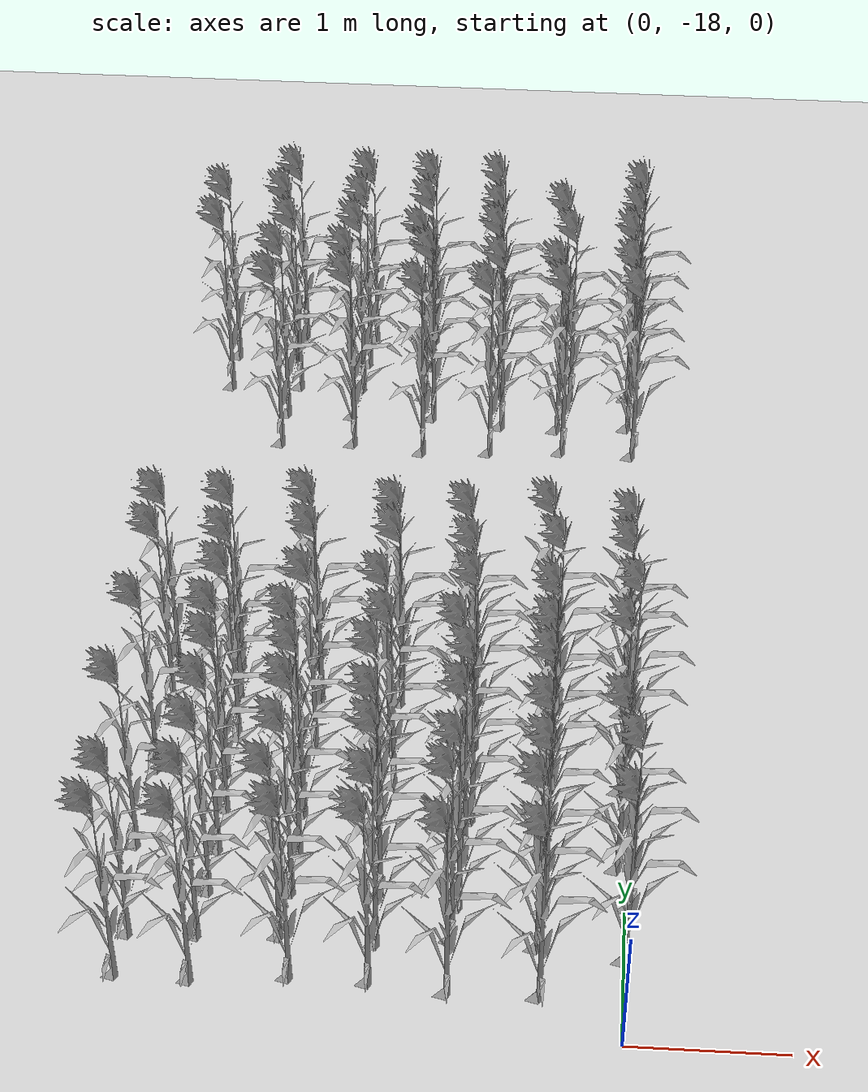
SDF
<sdf version="1.7">
 <world name="farmland_world">
  <model name="ground_plane">
   <static>1</static>
   <link name="link">
    <collision name="collision">
     <geometry><plane><normal>0 0 1</normal><size>40.0 40.0</size></plane></geometry>
     <surface><friction><ode><mu>100</mu><mu2>50</mu2></ode></friction></surface>
    </collision>
    <visual name="visual">
     <cast_shadows>0</cast_shadows>
     <geometry><plane><normal>0 0 1</normal><size>40.0 40.0</size></plane></geometry>
     <material>
      <script><uri>file://media/materials/scripts/gazebo.material</uri><name>Gazebo/Grey</name></script>
     </material>
    </visual>
   </link>
  </model>
  <model name="tree_3_1605">
   <static>1</static>
   <link name="link">
    <collision name="collision">
     <geometry><mesh><uri>model://Corn_low_poly/corn.obj</uri><scale>1 1 1</scale></mesh></geometry>
     <surface><friction><ode><mu>100</mu><mu2>50</mu2></ode></friction></surface>
    </collision>
    <visual name="visual">
     <geometry><mesh><uri>model://Corn_low_poly/corn.obj</uri><scale>1 1 1</scale></mesh></geometry>
    </visual>
   </link>
   <pose>0.03580438227191323 -16.965734375061757 0 0 0 0</pose>
  </model>
  <model name="tree_3_1606">
   <static>1</static>
   <link name="link">
    <collision name="collision">
     <geometry><mesh><uri>model://Corn_low_poly/corn.obj</uri><scale>1 1 1</scale></mesh></geometry>
     <surface><friction><ode><mu>100</mu><mu2>50</mu2></ode></friction></surface>
    </collision>
    <visual name="visual">
     <geometry><mesh><uri>model://Corn_low_poly/corn.obj</uri><scale>1 1 1</scale></mesh></geometry>
    </visual>
   </link>
   <pose>-0.48806217742073676 -17.019075737914203 0 0 0 0</pose>
  </model>
  <model name="tree_3_1607">
   <static>1</static>
   <link name="link">
    <collision name="collision">
     <geometry><mesh><uri>model://Corn_low_poly/corn.obj</uri><scale>1 1 1</scale></mesh></geometry>
     <surface><friction><ode><mu>100</mu><mu2>50</mu2></ode></friction></surface>
    </collision>
    <visual name="visual">
     <geometry><mesh><uri>model://Corn_low_poly/corn.obj</uri><scale>1 1 1</scale></mesh></geometry>
    </visual>
   </link>
   <pose>-1.022602186797494 -17.025036927320958 0 0 0 0</pose>
  </model>
  <model name="tree_3_1608">
   <static>1</static>
   <link name="link">
    <collision name="collision">
     <geometry><mesh><uri>model://Corn_low_poly/corn.obj</uri><scale>1 1 1</scale></mesh></geometry>
     <surface><friction><ode><mu>100</mu><mu2>50</mu2></ode></friction></surface>
    </collision>
    <visual name="visual">
     <geometry><mesh><uri>model://Corn_low_poly/corn.obj</uri><scale>1 1 1</scale></mesh></geometry>
    </visual>
   </link>
   <pose>-1.51720630812471 -16.95504403540866 0 0 0 0</pose>
  </model>
  <model name="tree_3_1609">
   <static>1</static>
   <link name="link">
    <collision name="collision">
     <geometry><mesh><uri>model://Corn_low_poly/corn.obj</uri><scale>1 1 1</scale></mesh></geometry>
     <surface><friction><ode><mu>100</mu><mu2>50</mu2></ode></friction></surface>
    </collision>
    <visual name="visual">
     <geometry><mesh><uri>model://Corn_low_poly/corn.obj</uri><scale>1 1 1</scale></mesh></geometry>
    </visual>
   </link>
   <pose>-2.0699709084349744 -16.97893547436473 0 0 0 0</pose>
  </model>
  <model name="tree_3_1610">
   <static>1</static>
   <link name="link">
    <collision name="collision">
     <geometry><mesh><uri>model://Corn_low_poly/corn.obj</uri><scale>1 1 1</scale></mesh></geometry>
     <surface><friction><ode><mu>100</mu><mu2>50</mu2></ode></friction></surface>
    </collision>
    <visual name="visual">
     <geometry><mesh><uri>model://Corn_low_poly/corn.obj</uri><scale>1 1 1</scale></mesh></geometry>
    </visual>
   </link>
   <pose>-2.5872986092563837 -17.003061664797787 0 0 0 0</pose>
  </model>
  <model name="tree_3_1639">
   <static>1</static>
   <link name="link">
    <collision name="collision">
     <geometry><mesh><uri>model://Corn_low_poly/corn.obj</uri><scale>1 1 1</scale></mesh></geometry>
     <surface><friction><ode><mu>100</mu><mu2>50</mu2></ode></friction></surface>
    </collision>
    <visual name="visual">
     <geometry><mesh><uri>model://Corn_low_poly/corn.obj</uri><scale>1 1 1</scale></mesh></geometry>
    </visual>
   </link>
   <pose>0.01223257692576224 -17.375856755586607 0 0 0 0</pose>
  </model>
  <model name="tree_3_1640">
   <static>1</static>
   <link name="link">
    <collision name="collision">
     <geometry><mesh><uri>model://Corn_low_poly/corn.obj</uri><scale>1 1 1</scale></mesh></geometry>
     <surface><friction><ode><mu>100</mu><mu2>50</mu2></ode></friction></surface>
    </collision>
    <visual name="visual">
     <geometry><mesh><uri>model://Corn_low_poly/corn.obj</uri><scale>1 1 1</scale></mesh></geometry>
    </visual>
   </link>
   <pose>-0.5259435954539079 -17.313602590086965 0 0 0 0</pose>
  </model>
  <model name="tree_3_1641">
   <static>1</static>
   <link name="link">
    <collision name="collision">
     <geometry><mesh><uri>model://Corn_low_poly/corn.obj</uri><scale>1 1 1</scale></mesh></geometry>
     <surface><friction><ode><mu>100</mu><mu2>50</mu2></ode></friction></surface>
    </collision>
    <visual name="visual">
     <geometry><mesh><uri>model://Corn_low_poly/corn.obj</uri><scale>1 1 1</scale></mesh></geometry>
    </visual>
   </link>
   <pose>-1.0512692379449893 -17.281738934979764 0 0 0 0</pose>
  </model>
  <model name="tree_3_1642">
   <static>1</static>
   <link name="link">
    <collision name="collision">
     <geometry><mesh><uri>model://Corn_low_poly/corn.obj</uri><scale>1 1 1</scale></mesh></geometry>
     <surface><friction><ode><mu>100</mu><mu2>50</mu2></ode></friction></surface>
    </collision>
    <visual name="visual">
     <geometry><mesh><uri>model://Corn_low_poly/corn.obj</uri><scale>1 1 1</scale></mesh></geometry>
    </visual>
   </link>
   <pose>-1.511977792692507 -17.348620689104468 0 0 0 0</pose>
  </model>
  <model name="tree_3_1643">
   <static>1</static>
   <link name="link">
    <collision name="collision">
     <geometry><mesh><uri>model://Corn_low_poly/corn.obj</uri><scale>1 1 1</scale></mesh></geometry>
     <surface><friction><ode><mu>100</mu><mu2>50</mu2></ode></friction></surface>
    </collision>
    <visual name="visual">
     <geometry><mesh><uri>model://Corn_low_poly/corn.obj</uri><scale>1 1 1</scale></mesh></geometry>
    </visual>
   </link>
   <pose>-2.1064553904623096 -17.3278490546456 0 0 0 0</pose>
  </model>
  <model name="tree_3_1644">
   <static>1</static>
   <link name="link">
    <collision name="collision">
     <geometry><mesh><uri>model://Corn_low_poly/corn.obj</uri><scale>1 1 1</scale></mesh></geometry>
     <surface><friction><ode><mu>100</mu><mu2>50</mu2></ode></friction></surface>
    </collision>
    <visual name="visual">
     <geometry><mesh><uri>model://Corn_low_poly/corn.obj</uri><scale>1 1 1</scale></mesh></geometry>
    </visual>
   </link>
   <pose>-2.6143656554627808 -17.35269145576499 0 0 0 0</pose>
  </model>
  <model name="tree_3_1645">
   <static>1</static>
   <link name="link">
    <collision name="collision">
     <geometry><mesh><uri>model://Corn_low_poly/corn.obj</uri><scale>1 1 1</scale></mesh></geometry>
     <surface><friction><ode><mu>100</mu><mu2>50</mu2></ode></friction></surface>
    </collision>
    <visual name="visual">
     <geometry><mesh><uri>model://Corn_low_poly/corn.obj</uri><scale>1 1 1</scale></mesh></geometry>
    </visual>
   </link>
   <pose>-3.0410112991166613 -17.366645493108628 0 0 0 0</pose>
  </model>
  <model name="tree_3_1674">
   <static>1</static>
   <link name="link">
    <collision name="collision">
     <geometry><mesh><uri>model://Corn_low_poly/corn.obj</uri><scale>1 1 1</scale></mesh></geometry>
     <surface><friction><ode><mu>100</mu><mu2>50</mu2></ode></friction></surface>
    </collision>
    <visual name="visual">
     <geometry><mesh><uri>model://Corn_low_poly/corn.obj</uri><scale>1 1 1</scale></mesh></geometry>
    </visual>
   </link>
   <pose>-0.49896904610353937 -17.683444936593016 0 0 0 0</pose>
  </model>
  <model name="tree_3_1675">
   <static>1</static>
   <link name="link">
    <collision name="collision">
     <geometry><mesh><uri>model://Corn_low_poly/corn.obj</uri><scale>1 1 1</scale></mesh></geometry>
     <surface><friction><ode><mu>100</mu><mu2>50</mu2></ode></friction></surface>
    </collision>
    <visual name="visual">
     <geometry><mesh><uri>model://Corn_low_poly/corn.obj</uri><scale>1 1 1</scale></mesh></geometry>
    </visual>
   </link>
   <pose>-1.0566497971381217 -17.69189413715949 0 0 0 0</pose>
  </model>
  <model name="tree_3_1676">
   <static>1</static>
   <link name="link">
    <collision name="collision">
     <geometry><mesh><uri>model://Corn_low_poly/corn.obj</uri><scale>1 1 1</scale></mesh></geometry>
     <surface><friction><ode><mu>100</mu><mu2>50</mu2></ode></friction></surface>
    </collision>
    <visual name="visual">
     <geometry><mesh><uri>model://Corn_low_poly/corn.obj</uri><scale>1 1 1</scale></mesh></geometry>
    </visual>
   </link>
   <pose>-1.5346013113236674 -17.64199710138518 0 0 0 0</pose>
  </model>
  <model name="tree_3_1677">
   <static>1</static>
   <link name="link">
    <collision name="collision">
     <geometry><mesh><uri>model://Corn_low_poly/corn.obj</uri><scale>1 1 1</scale></mesh></geometry>
     <surface><friction><ode><mu>100</mu><mu2>50</mu2></ode></friction></surface>
    </collision>
    <visual name="visual">
     <geometry><mesh><uri>model://Corn_low_poly/corn.obj</uri><scale>1 1 1</scale></mesh></geometry>
    </visual>
   </link>
   <pose>-2.0174713381224842 -17.634693459930666 0 0 0 0</pose>
  </model>
  <model name="tree_3_1678">
   <static>1</static>
   <link name="link">
    <collision name="collision">
     <geometry><mesh><uri>model://Corn_low_poly/corn.obj</uri><scale>1 1 1</scale></mesh></geometry>
     <surface><friction><ode><mu>100</mu><mu2>50</mu2></ode></friction></surface>
    </collision>
    <visual name="visual">
     <geometry><mesh><uri>model://Corn_low_poly/corn.obj</uri><scale>1 1 1</scale></mesh></geometry>
    </visual>
   </link>
   <pose>-2.6153042352268594 -17.69215711642908 0 0 0 0</pose>
  </model>
  <model name="tree_3_1679">
   <static>1</static>
   <link name="link">
    <collision name="collision">
     <geometry><mesh><uri>model://Corn_low_poly/corn.obj</uri><scale>1 1 1</scale></mesh></geometry>
     <surface><friction><ode><mu>100</mu><mu2>50</mu2></ode></friction></surface>
    </collision>
    <visual name="visual">
     <geometry><mesh><uri>model://Corn_low_poly/corn.obj</uri><scale>1 1 1</scale></mesh></geometry>
    </visual>
   </link>
   <pose>-3.0767169645903296 -17.681668698711448 0 0 0 0</pose>
  </model>
  <model name="tree_3_1707">
   <static>1</static>
   <link name="link">
    <collision name="collision">
     <geometry><mesh><uri>model://Corn_low_poly/corn.obj</uri><scale>1 1 1</scale></mesh></geometry>
     <surface><friction><ode><mu>100</mu><mu2>50</mu2></ode></friction></surface>
    </collision>
    <visual name="visual">
     <geometry><mesh><uri>model://Corn_low_poly/corn.obj</uri><scale>1 1 1</scale></mesh></geometry>
    </visual>
   </link>
   <pose>-0.035449133182240834 -15.999406268520676 0 0 0 0</pose>
  </model>
  <model name="tree_3_1708">
   <static>1</static>
   <link name="link">
    <collision name="collision">
     <geometry><mesh><uri>model://Corn_low_poly/corn.obj</uri><scale>1 1 1</scale></mesh></geometry>
     <surface><friction><ode><mu>100</mu><mu2>50</mu2></ode></friction></surface>
    </collision>
    <visual name="visual">
     <geometry><mesh><uri>model://Corn_low_poly/corn.obj</uri><scale>1 1 1</scale></mesh></geometry>
    </visual>
   </link>
   <pose>-0.48854795535615475 -16.032327239612282 0 0 0 0</pose>
  </model>
  <model name="tree_3_1709">
   <static>1</static>
   <link name="link">
    <collision name="collision">
     <geometry><mesh><uri>model://Corn_low_poly/corn.obj</uri><scale>1 1 1</scale></mesh></geometry>
     <surface><friction><ode><mu>100</mu><mu2>50</mu2></ode></friction></surface>
    </collision>
    <visual name="visual">
     <geometry><mesh><uri>model://Corn_low_poly/corn.obj</uri><scale>1 1 1</scale></mesh></geometry>
    </visual>
   </link>
   <pose>-1.0565862001060122 -16.044277763240892 0 0 0 0</pose>
  </model>
  <model name="tree_3_1710">
   <static>1</static>
   <link name="link">
    <collision name="collision">
     <geometry><mesh><uri>model://Corn_low_poly/corn.obj</uri><scale>1 1 1</scale></mesh></geometry>
     <surface><friction><ode><mu>100</mu><mu2>50</mu2></ode></friction></surface>
    </collision>
    <visual name="visual">
     <geometry><mesh><uri>model://Corn_low_poly/corn.obj</uri><scale>1 1 1</scale></mesh></geometry>
    </visual>
   </link>
   <pose>-1.5063646474283288 -16.041509782245402 0 0 0 0</pose>
  </model>
  <model name="tree_3_1711">
   <static>1</static>
   <link name="link">
    <collision name="collision">
     <geometry><mesh><uri>model://Corn_low_poly/corn.obj</uri><scale>1 1 1</scale></mesh></geometry>
     <surface><friction><ode><mu>100</mu><mu2>50</mu2></ode></friction></surface>
    </collision>
    <visual name="visual">
     <geometry><mesh><uri>model://Corn_low_poly/corn.obj</uri><scale>1 1 1</scale></mesh></geometry>
    </visual>
   </link>
   <pose>-2.106981034272046 -16.042465766142232 0 0 0 0</pose>
  </model>
  <model name="tree_3_1712">
   <static>1</static>
   <link name="link">
    <collision name="collision">
     <geometry><mesh><uri>model://Corn_low_poly/corn.obj</uri><scale>1 1 1</scale></mesh></geometry>
     <surface><friction><ode><mu>100</mu><mu2>50</mu2></ode></friction></surface>
    </collision>
    <visual name="visual">
     <geometry><mesh><uri>model://Corn_low_poly/corn.obj</uri><scale>1 1 1</scale></mesh></geometry>
    </visual>
   </link>
   <pose>-2.5999328370831476 -16.018123625433503 0 0 0 0</pose>
  </model>
  <model name="tree_3_1713">
   <static>1</static>
   <link name="link">
    <collision name="collision">
     <geometry><mesh><uri>model://Corn_low_poly/corn.obj</uri><scale>1 1 1</scale></mesh></geometry>
     <surface><friction><ode><mu>100</mu><mu2>50</mu2></ode></friction></surface>
    </collision>
    <visual name="visual">
     <geometry><mesh><uri>model://Corn_low_poly/corn.obj</uri><scale>1 1 1</scale></mesh></geometry>
    </visual>
   </link>
   <pose>-3.06489963839304 -16.00297382069055 0 0 0 0</pose>
  </model>
  <model name="tree_3_1742">
   <static>1</static>
   <link name="link">
    <collision name="collision">
     <geometry><mesh><uri>model://Corn_low_poly/corn.obj</uri><scale>1 1 1</scale></mesh></geometry>
     <surface><friction><ode><mu>100</mu><mu2>50</mu2></ode></friction></surface>
    </collision>
    <visual name="visual">
     <geometry><mesh><uri>model://Corn_low_poly/corn.obj</uri><scale>1 1 1</scale></mesh></geometry>
    </visual>
   </link>
   <pose>-0.49264915320095404 -16.300851779280137 0 0 0 0</pose>
  </model>
  <model name="tree_3_1743">
   <static>1</static>
   <link name="link">
    <collision name="collision">
     <geometry><mesh><uri>model://Corn_low_poly/corn.obj</uri><scale>1 1 1</scale></mesh></geometry>
     <surface><friction><ode><mu>100</mu><mu2>50</mu2></ode></friction></surface>
    </collision>
    <visual name="visual">
     <geometry><mesh><uri>model://Corn_low_poly/corn.obj</uri><scale>1 1 1</scale></mesh></geometry>
    </visual>
   </link>
   <pose>-0.982311568787443 -16.311153095895232 0 0 0 0</pose>
  </model>
  <model name="tree_3_1744">
   <static>1</static>
   <link name="link">
    <collision name="collision">
     <geometry><mesh><uri>model://Corn_low_poly/corn.obj</uri><scale>1 1 1</scale></mesh></geometry>
     <surface><friction><ode><mu>100</mu><mu2>50</mu2></ode></friction></surface>
    </collision>
    <visual name="visual">
     <geometry><mesh><uri>model://Corn_low_poly/corn.obj</uri><scale>1 1 1</scale></mesh></geometry>
    </visual>
   </link>
   <pose>-1.5735538980863804 -16.304917054576094 0 0 0 0</pose>
  </model>
  <model name="tree_3_1745">
   <static>1</static>
   <link name="link">
    <collision name="collision">
     <geometry><mesh><uri>model://Corn_low_poly/corn.obj</uri><scale>1 1 1</scale></mesh></geometry>
     <surface><friction><ode><mu>100</mu><mu2>50</mu2></ode></friction></surface>
    </collision>
    <visual name="visual">
     <geometry><mesh><uri>model://Corn_low_poly/corn.obj</uri><scale>1 1 1</scale></mesh></geometry>
    </visual>
   </link>
   <pose>-2.061409340842669 -16.32086119700367 0 0 0 0</pose>
  </model>
  <model name="tree_3_1746">
   <static>1</static>
   <link name="link">
    <collision name="collision">
     <geometry><mesh><uri>model://Corn_low_poly/corn.obj</uri><scale>1 1 1</scale></mesh></geometry>
     <surface><friction><ode><mu>100</mu><mu2>50</mu2></ode></friction></surface>
    </collision>
    <visual name="visual">
     <geometry><mesh><uri>model://Corn_low_poly/corn.obj</uri><scale>1 1 1</scale></mesh></geometry>
    </visual>
   </link>
   <pose>-2.5669677084516582 -16.312730404993385 0 0 0 0</pose>
  </model>
  <model name="tree_3_1775">
   <static>1</static>
   <link name="link">
    <collision name="collision">
     <geometry><mesh><uri>model://Corn_low_poly/corn.obj</uri><scale>1 1 1</scale></mesh></geometry>
     <surface><friction><ode><mu>100</mu><mu2>50</mu2></ode></friction></surface>
    </collision>
    <visual name="visual">
     <geometry><mesh><uri>model://Corn_low_poly/corn.obj</uri><scale>1 1 1</scale></mesh></geometry>
    </visual>
   </link>
   <pose>-0.042753023206622935 -16.657932509737165 0 0 0 0</pose>
  </model>
  <model name="tree_3_1776">
   <static>1</static>
   <link name="link">
    <collision name="collision">
     <geometry><mesh><uri>model://Corn_low_poly/corn.obj</uri><scale>1 1 1</scale></mesh></geometry>
     <surface><friction><ode><mu>100</mu><mu2>50</mu2></ode></friction></surface>
    </collision>
    <visual name="visual">
     <geometry><mesh><uri>model://Corn_low_poly/corn.obj</uri><scale>1 1 1</scale></mesh></geometry>
    </visual>
   </link>
   <pose>-0.49622047188545415 -16.69370384788353 0 0 0 0</pose>
  </model>
  <model name="tree_3_1777">
   <static>1</static>
   <link name="link">
    <collision name="collision">
     <geometry><mesh><uri>model://Corn_low_poly/corn.obj</uri><scale>1 1 1</scale></mesh></geometry>
     <surface><friction><ode><mu>100</mu><mu2>50</mu2></ode></friction></surface>
    </collision>
    <visual name="visual">
     <geometry><mesh><uri>model://Corn_low_poly/corn.obj</uri><scale>1 1 1</scale></mesh></geometry>
    </visual>
   </link>
   <pose>-1.0104470062620983 -16.62006676315451 0 0 0 0</pose>
  </model>
  <model name="tree_3_1778">
   <static>1</static>
   <link name="link">
    <collision name="collision">
     <geometry><mesh><uri>model://Corn_low_poly/corn.obj</uri><scale>1 1 1</scale></mesh></geometry>
     <surface><friction><ode><mu>100</mu><mu2>50</mu2></ode></friction></surface>
    </collision>
    <visual name="visual">
     <geometry><mesh><uri>model://Corn_low_poly/corn.obj</uri><scale>1 1 1</scale></mesh></geometry>
    </visual>
   </link>
   <pose>-1.5483287686617342 -16.674632684055368 0 0 0 0</pose>
  </model>
  <model name="tree_3_1779">
   <static>1</static>
   <link name="link">
    <collision name="collision">
     <geometry><mesh><uri>model://Corn_low_poly/corn.obj</uri><scale>1 1 1</scale></mesh></geometry>
     <surface><friction><ode><mu>100</mu><mu2>50</mu2></ode></friction></surface>
    </collision>
    <visual name="visual">
     <geometry><mesh><uri>model://Corn_low_poly/corn.obj</uri><scale>1 1 1</scale></mesh></geometry>
    </visual>
   </link>
   <pose>-2.058537543798531 -16.631721036415236 0 0 0 0</pose>
  </model>
  <model name="tree_3_1780">
   <static>1</static>
   <link name="link">
    <collision name="collision">
     <geometry><mesh><uri>model://Corn_low_poly/corn.obj</uri><scale>1 1 1</scale></mesh></geometry>
     <surface><friction><ode><mu>100</mu><mu2>50</mu2></ode></friction></surface>
    </collision>
    <visual name="visual">
     <geometry><mesh><uri>model://Corn_low_poly/corn.obj</uri><scale>1 1 1</scale></mesh></geometry>
    </visual>
   </link>
   <pose>-2.573038079847714 -16.659624129910682 0 0 0 0</pose>
  </model>
  <model name="tree_3_1781">
   <static>1</static>
   <link name="link">
    <collision name="collision">
     <geometry><mesh><uri>model://Corn_low_poly/corn.obj</uri><scale>1 1 1</scale></mesh></geometry>
     <surface><friction><ode><mu>100</mu><mu2>50</mu2></ode></friction></surface>
    </collision>
    <visual name="visual">
     <geometry><mesh><uri>model://Corn_low_poly/corn.obj</uri><scale>1 1 1</scale></mesh></geometry>
    </visual>
   </link>
   <pose>-3.099198018691596 -16.65539907107195 0 0 0 0</pose>
  </model>
  <model name="tree_3_1809">
   <static>1</static>
   <link name="link">
    <collision name="collision">
     <geometry><mesh><uri>model://Corn_low_poly/corn.obj</uri><scale>1 1 1</scale></mesh></geometry>
     <surface><friction><ode><mu>100</mu><mu2>50</mu2></ode></friction></surface>
    </collision>
    <visual name="visual">
     <geometry><mesh><uri>model://Corn_low_poly/corn.obj</uri><scale>1 1 1</scale></mesh></geometry>
    </visual>
   </link>
   <pose>-0.019032483130327894 -15.04005094235962 0 0 0 0</pose>
  </model>
  <model name="tree_3_1810">
   <static>1</static>
   <link name="link">
    <collision name="collision">
     <geometry><mesh><uri>model://Corn_low_poly/corn.obj</uri><scale>1 1 1</scale></mesh></geometry>
     <surface><friction><ode><mu>100</mu><mu2>50</mu2></ode></friction></surface>
    </collision>
    <visual name="visual">
     <geometry><mesh><uri>model://Corn_low_poly/corn.obj</uri><scale>1 1 1</scale></mesh></geometry>
    </visual>
   </link>
   <pose>-0.5430563736926338 -14.96544203033237 0 0 0 0</pose>
  </model>
  <model name="tree_3_1811">
   <static>1</static>
   <link name="link">
    <collision name="collision">
     <geometry><mesh><uri>model://Corn_low_poly/corn.obj</uri><scale>1 1 1</scale></mesh></geometry>
     <surface><friction><ode><mu>100</mu><mu2>50</mu2></ode></friction></surface>
    </collision>
    <visual name="visual">
     <geometry><mesh><uri>model://Corn_low_poly/corn.obj</uri><scale>1 1 1</scale></mesh></geometry>
    </visual>
   </link>
   <pose>-1.0646083463070972 -15.026947842731158 0 0 0 0</pose>
  </model>
  <model name="tree_3_1812">
   <static>1</static>
   <link name="link">
    <collision name="collision">
     <geometry><mesh><uri>model://Corn_low_poly/corn.obj</uri><scale>1 1 1</scale></mesh></geometry>
     <surface><friction><ode><mu>100</mu><mu2>50</mu2></ode></friction></surface>
    </collision>
    <visual name="visual">
     <geometry><mesh><uri>model://Corn_low_poly/corn.obj</uri><scale>1 1 1</scale></mesh></geometry>
    </visual>
   </link>
   <pose>-1.5304120524349414 -15.029410684205766 0 0 0 0</pose>
  </model>
  <model name="tree_3_1813">
   <static>1</static>
   <link name="link">
    <collision name="collision">
     <geometry><mesh><uri>model://Corn_low_poly/corn.obj</uri><scale>1 1 1</scale></mesh></geometry>
     <surface><friction><ode><mu>100</mu><mu2>50</mu2></ode></friction></surface>
    </collision>
    <visual name="visual">
     <geometry><mesh><uri>model://Corn_low_poly/corn.obj</uri><scale>1 1 1</scale></mesh></geometry>
    </visual>
   </link>
   <pose>-2.101461535654003 -14.978871491245814 0 0 0 0</pose>
  </model>
  <model name="tree_3_1814">
   <static>1</static>
   <link name="link">
    <collision name="collision">
     <geometry><mesh><uri>model://Corn_low_poly/corn.obj</uri><scale>1 1 1</scale></mesh></geometry>
     <surface><friction><ode><mu>100</mu><mu2>50</mu2></ode></friction></surface>
    </collision>
    <visual name="visual">
     <geometry><mesh><uri>model://Corn_low_poly/corn.obj</uri><scale>1 1 1</scale></mesh></geometry>
    </visual>
   </link>
   <pose>-2.6205717691016215 -15.025686590620841 0 0 0 0</pose>
  </model>
  <model name="tree_3_1815">
   <static>1</static>
   <link name="link">
    <collision name="collision">
     <geometry><mesh><uri>model://Corn_low_poly/corn.obj</uri><scale>1 1 1</scale></mesh></geometry>
     <surface><friction><ode><mu>100</mu><mu2>50</mu2></ode></friction></surface>
    </collision>
    <visual name="visual">
     <geometry><mesh><uri>model://Corn_low_poly/corn.obj</uri><scale>1 1 1</scale></mesh></geometry>
    </visual>
   </link>
   <pose>-3.0596779697640475 -15.041468609129426 0 0 0 0</pose>
  </model>
  <model name="tree_3_1843">
   <static>1</static>
   <link name="link">
    <collision name="collision">
     <geometry><mesh><uri>model://Corn_low_poly/corn.obj</uri><scale>1 1 1</scale></mesh></geometry>
     <surface><friction><ode><mu>100</mu><mu2>50</mu2></ode></friction></surface>
    </collision>
    <visual name="visual">
     <geometry><mesh><uri>model://Corn_low_poly/corn.obj</uri><scale>1 1 1</scale></mesh></geometry>
    </visual>
   </link>
   <pose>-0.026539292519846703 -15.301367005944677 0 0 0 0</pose>
  </model>
  <model name="tree_3_1844">
   <static>1</static>
   <link name="link">
    <collision name="collision">
     <geometry><mesh><uri>model://Corn_low_poly/corn.obj</uri><scale>1 1 1</scale></mesh></geometry>
     <surface><friction><ode><mu>100</mu><mu2>50</mu2></ode></friction></surface>
    </collision>
    <visual name="visual">
     <geometry><mesh><uri>model://Corn_low_poly/corn.obj</uri><scale>1 1 1</scale></mesh></geometry>
    </visual>
   </link>
   <pose>-0.4721218758651081 -15.293385926404888 0 0 0 0</pose>
  </model>
  <model name="tree_3_1845">
   <static>1</static>
   <link name="link">
    <collision name="collision">
     <geometry><mesh><uri>model://Corn_low_poly/corn.obj</uri><scale>1 1 1</scale></mesh></geometry>
     <surface><friction><ode><mu>100</mu><mu2>50</mu2></ode></friction></surface>
    </collision>
    <visual name="visual">
     <geometry><mesh><uri>model://Corn_low_poly/corn.obj</uri><scale>1 1 1</scale></mesh></geometry>
    </visual>
   </link>
   <pose>-1.021401119915834 -15.348654434049795 0 0 0 0</pose>
  </model>
  <model name="tree_3_1846">
   <static>1</static>
   <link name="link">
    <collision name="collision">
     <geometry><mesh><uri>model://Corn_low_poly/corn.obj</uri><scale>1 1 1</scale></mesh></geometry>
     <surface><friction><ode><mu>100</mu><mu2>50</mu2></ode></friction></surface>
    </collision>
    <visual name="visual">
     <geometry><mesh><uri>model://Corn_low_poly/corn.obj</uri><scale>1 1 1</scale></mesh></geometry>
    </visual>
   </link>
   <pose>-1.512348900766611 -15.297769854534055 0 0 0 0</pose>
  </model>
  <model name="tree_3_1847">
   <static>1</static>
   <link name="link">
    <collision name="collision">
     <geometry><mesh><uri>model://Corn_low_poly/corn.obj</uri><scale>1 1 1</scale></mesh></geometry>
     <surface><friction><ode><mu>100</mu><mu2>50</mu2></ode></friction></surface>
    </collision>
    <visual name="visual">
     <geometry><mesh><uri>model://Corn_low_poly/corn.obj</uri><scale>1 1 1</scale></mesh></geometry>
    </visual>
   </link>
   <pose>-2.05180370574473 -15.289252499590285 0 0 0 0</pose>
  </model>
  <model name="tree_3_1848">
   <static>1</static>
   <link name="link">
    <collision name="collision">
     <geometry><mesh><uri>model://Corn_low_poly/corn.obj</uri><scale>1 1 1</scale></mesh></geometry>
     <surface><friction><ode><mu>100</mu><mu2>50</mu2></ode></friction></surface>
    </collision>
    <visual name="visual">
     <geometry><mesh><uri>model://Corn_low_poly/corn.obj</uri><scale>1 1 1</scale></mesh></geometry>
    </visual>
   </link>
   <pose>-2.58925958252166 -15.365116595083672 0 0 0 0</pose>
  </model>
  <model name="tree_3_1849">
   <static>1</static>
   <link name="link">
    <collision name="collision">
     <geometry><mesh><uri>model://Corn_low_poly/corn.obj</uri><scale>1 1 1</scale></mesh></geometry>
     <surface><friction><ode><mu>100</mu><mu2>50</mu2></ode></friction></surface>
    </collision>
    <visual name="visual">
     <geometry><mesh><uri>model://Corn_low_poly/corn.obj</uri><scale>1 1 1</scale></mesh></geometry>
    </visual>
   </link>
   <pose>-3.051806501781784 -15.362865812654638 0 0 0 0</pose>
  </model>
  <model name="tree_3_1877">
   <static>1</static>
   <link name="link">
    <collision name="collision">
     <geometry><mesh><uri>model://Corn_low_poly/corn.obj</uri><scale>1 1 1</scale></mesh></geometry>
     <surface><friction><ode><mu>100</mu><mu2>50</mu2></ode></friction></surface>
    </collision>
    <visual name="visual">
     <geometry><mesh><uri>model://Corn_low_poly/corn.obj</uri><scale>1 1 1</scale></mesh></geometry>
    </visual>
   </link>
   <pose>0.02148245748185772 -15.65390571926267 0 0 0 0</pose>
  </model>
  <model name="tree_3_1878">
   <static>1</static>
   <link name="link">
    <collision name="collision">
     <geometry><mesh><uri>model://Corn_low_poly/corn.obj</uri><scale>1 1 1</scale></mesh></geometry>
     <surface><friction><ode><mu>100</mu><mu2>50</mu2></ode></friction></surface>
    </collision>
    <visual name="visual">
     <geometry><mesh><uri>model://Corn_low_poly/corn.obj</uri><scale>1 1 1</scale></mesh></geometry>
    </visual>
   </link>
   <pose>-0.49041434500487574 -15.714281886583645 0 0 0 0</pose>
  </model>
  <model name="tree_3_1879">
   <static>1</static>
   <link name="link">
    <collision name="collision">
     <geometry><mesh><uri>model://Corn_low_poly/corn.obj</uri><scale>1 1 1</scale></mesh></geometry>
     <surface><friction><ode><mu>100</mu><mu2>50</mu2></ode></friction></surface>
    </collision>
    <visual name="visual">
     <geometry><mesh><uri>model://Corn_low_poly/corn.obj</uri><scale>1 1 1</scale></mesh></geometry>
    </visual>
   </link>
   <pose>-0.993373801347837 -15.665846552643012 0 0 0 0</pose>
  </model>
  <model name="tree_3_1880">
   <static>1</static>
   <link name="link">
    <collision name="collision">
     <geometry><mesh><uri>model://Corn_low_poly/corn.obj</uri><scale>1 1 1</scale></mesh></geometry>
     <surface><friction><ode><mu>100</mu><mu2>50</mu2></ode></friction></surface>
    </collision>
    <visual name="visual">
     <geometry><mesh><uri>model://Corn_low_poly/corn.obj</uri><scale>1 1 1</scale></mesh></geometry>
    </visual>
   </link>
   <pose>-1.5607460309301266 -15.709786410748686 0 0 0 0</pose>
  </model>
  <model name="tree_3_1881">
   <static>1</static>
   <link name="link">
    <collision name="collision">
     <geometry><mesh><uri>model://Corn_low_poly/corn.obj</uri><scale>1 1 1</scale></mesh></geometry>
     <surface><friction><ode><mu>100</mu><mu2>50</mu2></ode></friction></surface>
    </collision>
    <visual name="visual">
     <geometry><mesh><uri>model://Corn_low_poly/corn.obj</uri><scale>1 1 1</scale></mesh></geometry>
    </visual>
   </link>
   <pose>-2.0506551109880213 -15.710978861527499 0 0 0 0</pose>
  </model>
  <model name="tree_3_1882">
   <static>1</static>
   <link name="link">
    <collision name="collision">
     <geometry><mesh><uri>model://Corn_low_poly/corn.obj</uri><scale>1 1 1</scale></mesh></geometry>
     <surface><friction><ode><mu>100</mu><mu2>50</mu2></ode></friction></surface>
    </collision>
    <visual name="visual">
     <geometry><mesh><uri>model://Corn_low_poly/corn.obj</uri><scale>1 1 1</scale></mesh></geometry>
    </visual>
   </link>
   <pose>-2.565242098770092 -15.683182900909792 0 0 0 0</pose>
  </model>
  <model name="tree_3_1911">
   <static>1</static>
   <link name="link">
    <collision name="collision">
     <geometry><mesh><uri>model://Corn_low_poly/corn.obj</uri><scale>1 1 1</scale></mesh></geometry>
     <surface><friction><ode><mu>100</mu><mu2>50</mu2></ode></friction></surface>
    </collision>
    <visual name="visual">
     <geometry><mesh><uri>model://Corn_low_poly/corn.obj</uri><scale>1 1 1</scale></mesh></geometry>
    </visual>
   </link>
   <pose>-0.034425861917255086 -11.959343326930393 0 0 0 0</pose>
  </model>
  <model name="tree_3_1912">
   <static>1</static>
   <link name="link">
    <collision name="collision">
     <geometry><mesh><uri>model://Corn_low_poly/corn.obj</uri><scale>1 1 1</scale></mesh></geometry>
     <surface><friction><ode><mu>100</mu><mu2>50</mu2></ode></friction></surface>
    </collision>
    <visual name="visual">
     <geometry><mesh><uri>model://Corn_low_poly/corn.obj</uri><scale>1 1 1</scale></mesh></geometry>
    </visual>
   </link>
   <pose>-0.47166199121898555 -11.991934822539985 0 0 0 0</pose>
  </model>
  <model name="tree_3_1913">
   <static>1</static>
   <link name="link">
    <collision name="collision">
     <geometry><mesh><uri>model://Corn_low_poly/corn.obj</uri><scale>1 1 1</scale></mesh></geometry>
     <surface><friction><ode><mu>100</mu><mu2>50</mu2></ode></friction></surface>
    </collision>
    <visual name="visual">
     <geometry><mesh><uri>model://Corn_low_poly/corn.obj</uri><scale>1 1 1</scale></mesh></geometry>
    </visual>
   </link>
   <pose>-1.0188811236813347 -11.96439535605653 0 0 0 0</pose>
  </model>
  <model name="tree_3_1914">
   <static>1</static>
   <link name="link">
    <collision name="collision">
     <geometry><mesh><uri>model://Corn_low_poly/corn.obj</uri><scale>1 1 1</scale></mesh></geometry>
     <surface><friction><ode><mu>100</mu><mu2>50</mu2></ode></friction></surface>
    </collision>
    <visual name="visual">
     <geometry><mesh><uri>model://Corn_low_poly/corn.obj</uri><scale>1 1 1</scale></mesh></geometry>
    </visual>
   </link>
   <pose>-1.5812491391285801 -12.042096671539866 0 0 0 0</pose>
  </model>
  <model name="tree_3_1915">
   <static>1</static>
   <link name="link">
    <collision name="collision">
     <geometry><mesh><uri>model://Corn_low_poly/corn.obj</uri><scale>1 1 1</scale></mesh></geometry>
     <surface><friction><ode><mu>100</mu><mu2>50</mu2></ode></friction></surface>
    </collision>
    <visual name="visual">
     <geometry><mesh><uri>model://Corn_low_poly/corn.obj</uri><scale>1 1 1</scale></mesh></geometry>
    </visual>
   </link>
   <pose>-2.0643886145613894 -11.972259885401213 0 0 0 0</pose>
  </model>
  <model name="tree_3_1916">
   <static>1</static>
   <link name="link">
    <collision name="collision">
     <geometry><mesh><uri>model://Corn_low_poly/corn.obj</uri><scale>1 1 1</scale></mesh></geometry>
     <surface><friction><ode><mu>100</mu><mu2>50</mu2></ode></friction></surface>
    </collision>
    <visual name="visual">
     <geometry><mesh><uri>model://Corn_low_poly/corn.obj</uri><scale>1 1 1</scale></mesh></geometry>
    </visual>
   </link>
   <pose>-2.547749022611902 -11.977319893746628 0 0 0 0</pose>
  </model>
  <model name="tree_3_1917">
   <static>1</static>
   <link name="link">
    <collision name="collision">
     <geometry><mesh><uri>model://Corn_low_poly/corn.obj</uri><scale>1 1 1</scale></mesh></geometry>
     <surface><friction><ode><mu>100</mu><mu2>50</mu2></ode></friction></surface>
    </collision>
    <visual name="visual">
     <geometry><mesh><uri>model://Corn_low_poly/corn.obj</uri><scale>1 1 1</scale></mesh></geometry>
    </visual>
   </link>
   <pose>-3.075073434734885 -12.008071651029761 0 0 0 0</pose>
  </model>
  <model name="tree_3_1945">
   <static>1</static>
   <link name="link">
    <collision name="collision">
     <geometry><mesh><uri>model://Corn_low_poly/corn.obj</uri><scale>1 1 1</scale></mesh></geometry>
     <surface><friction><ode><mu>100</mu><mu2>50</mu2></ode></friction></surface>
    </collision>
    <visual name="visual">
     <geometry><mesh><uri>model://Corn_low_poly/corn.obj</uri><scale>1 1 1</scale></mesh></geometry>
    </visual>
   </link>
   <pose>-0.02669030240913648 -12.319886180796377 0 0 0 0</pose>
  </model>
  <model name="tree_3_1946">
   <static>1</static>
   <link name="link">
    <collision name="collision">
     <geometry><mesh><uri>model://Corn_low_poly/corn.obj</uri><scale>1 1 1</scale></mesh></geometry>
     <surface><friction><ode><mu>100</mu><mu2>50</mu2></ode></friction></surface>
    </collision>
    <visual name="visual">
     <geometry><mesh><uri>model://Corn_low_poly/corn.obj</uri><scale>1 1 1</scale></mesh></geometry>
    </visual>
   </link>
   <pose>-0.5601066170049556 -12.371869692731762 0 0 0 0</pose>
  </model>
  <model name="tree_3_1947">
   <static>1</static>
   <link name="link">
    <collision name="collision">
     <geometry><mesh><uri>model://Corn_low_poly/corn.obj</uri><scale>1 1 1</scale></mesh></geometry>
     <surface><friction><ode><mu>100</mu><mu2>50</mu2></ode></friction></surface>
    </collision>
    <visual name="visual">
     <geometry><mesh><uri>model://Corn_low_poly/corn.obj</uri><scale>1 1 1</scale></mesh></geometry>
    </visual>
   </link>
   <pose>-0.9812353869664396 -12.357830055976521 0 0 0 0</pose>
  </model>
  <model name="tree_3_1948">
   <static>1</static>
   <link name="link">
    <collision name="collision">
     <geometry><mesh><uri>model://Corn_low_poly/corn.obj</uri><scale>1 1 1</scale></mesh></geometry>
     <surface><friction><ode><mu>100</mu><mu2>50</mu2></ode></friction></surface>
    </collision>
    <visual name="visual">
     <geometry><mesh><uri>model://Corn_low_poly/corn.obj</uri><scale>1 1 1</scale></mesh></geometry>
    </visual>
   </link>
   <pose>-1.5021322916262803 -12.289127400488544 0 0 0 0</pose>
  </model>
  <model name="tree_3_1949">
   <static>1</static>
   <link name="link">
    <collision name="collision">
     <geometry><mesh><uri>model://Corn_low_poly/corn.obj</uri><scale>1 1 1</scale></mesh></geometry>
     <surface><friction><ode><mu>100</mu><mu2>50</mu2></ode></friction></surface>
    </collision>
    <visual name="visual">
     <geometry><mesh><uri>model://Corn_low_poly/corn.obj</uri><scale>1 1 1</scale></mesh></geometry>
    </visual>
   </link>
   <pose>-2.1096174401444205 -12.3077819130174 0 0 0 0</pose>
  </model>
  <model name="tree_3_1950">
   <static>1</static>
   <link name="link">
    <collision name="collision">
     <geometry><mesh><uri>model://Corn_low_poly/corn.obj</uri><scale>1 1 1</scale></mesh></geometry>
     <surface><friction><ode><mu>100</mu><mu2>50</mu2></ode></friction></surface>
    </collision>
    <visual name="visual">
     <geometry><mesh><uri>model://Corn_low_poly/corn.obj</uri><scale>1 1 1</scale></mesh></geometry>
    </visual>
   </link>
   <pose>-2.6103825740670414 -12.310167954479606 0 0 0 0</pose>
  </model>
  <model name="tree_3_1979">
   <static>1</static>
   <link name="link">
    <collision name="collision">
     <geometry><mesh><uri>model://Corn_low_poly/corn.obj</uri><scale>1 1 1</scale></mesh></geometry>
     <surface><friction><ode><mu>100</mu><mu2>50</mu2></ode></friction></surface>
    </collision>
    <visual name="visual">
     <geometry><mesh><uri>model://Corn_low_poly/corn.obj</uri><scale>1 1 1</scale></mesh></geometry>
    </visual>
   </link>
   <pose>0.009898442886588976 -12.645085523920907 0 0 0 0</pose>
  </model>
  <model name="tree_3_1980">
   <static>1</static>
   <link name="link">
    <collision name="collision">
     <geometry><mesh><uri>model://Corn_low_poly/corn.obj</uri><scale>1 1 1</scale></mesh></geometry>
     <surface><friction><ode><mu>100</mu><mu2>50</mu2></ode></friction></surface>
    </collision>
    <visual name="visual">
     <geometry><mesh><uri>model://Corn_low_poly/corn.obj</uri><scale>1 1 1</scale></mesh></geometry>
    </visual>
   </link>
   <pose>-0.514502705933424 -12.630613295279824 0 0 0 0</pose>
  </model>
  <model name="tree_3_1981">
   <static>1</static>
   <link name="link">
    <collision name="collision">
     <geometry><mesh><uri>model://Corn_low_poly/corn.obj</uri><scale>1 1 1</scale></mesh></geometry>
     <surface><friction><ode><mu>100</mu><mu2>50</mu2></ode></friction></surface>
    </collision>
    <visual name="visual">
     <geometry><mesh><uri>model://Corn_low_poly/corn.obj</uri><scale>1 1 1</scale></mesh></geometry>
    </visual>
   </link>
   <pose>-1.0559507421905052 -12.671811238284183 0 0 0 0</pose>
  </model>
  <model name="tree_3_1982">
   <static>1</static>
   <link name="link">
    <collision name="collision">
     <geometry><mesh><uri>model://Corn_low_poly/corn.obj</uri><scale>1 1 1</scale></mesh></geometry>
     <surface><friction><ode><mu>100</mu><mu2>50</mu2></ode></friction></surface>
    </collision>
    <visual name="visual">
     <geometry><mesh><uri>model://Corn_low_poly/corn.obj</uri><scale>1 1 1</scale></mesh></geometry>
    </visual>
   </link>
   <pose>-1.5568573898422027 -12.700241111082782 0 0 0 0</pose>
  </model>
  <model name="tree_3_1983">
   <static>1</static>
   <link name="link">
    <collision name="collision">
     <geometry><mesh><uri>model://Corn_low_poly/corn.obj</uri><scale>1 1 1</scale></mesh></geometry>
     <surface><friction><ode><mu>100</mu><mu2>50</mu2></ode></friction></surface>
    </collision>
    <visual name="visual">
     <geometry><mesh><uri>model://Corn_low_poly/corn.obj</uri><scale>1 1 1</scale></mesh></geometry>
    </visual>
   </link>
   <pose>-2.0772906116167853 -12.633243030236768 0 0 0 0</pose>
  </model>
  <model name="tree_3_1984">
   <static>1</static>
   <link name="link">
    <collision name="collision">
     <geometry><mesh><uri>model://Corn_low_poly/corn.obj</uri><scale>1 1 1</scale></mesh></geometry>
     <surface><friction><ode><mu>100</mu><mu2>50</mu2></ode></friction></surface>
    </collision>
    <visual name="visual">
     <geometry><mesh><uri>model://Corn_low_poly/corn.obj</uri><scale>1 1 1</scale></mesh></geometry>
    </visual>
   </link>
   <pose>-2.621054067580654 -12.660543098412523 0 0 0 0</pose>
  </model>
  <model name="tree_3_2047">
   <static>1</static>
   <link name="link">
    <collision name="collision">
     <geometry><mesh><uri>model://Corn_low_poly/corn.obj</uri><scale>1 1 1</scale></mesh></geometry>
     <surface><friction><ode><mu>100</mu><mu2>50</mu2></ode></friction></surface>
    </collision>
    <visual name="visual">
     <geometry><mesh><uri>model://Corn_low_poly/corn.obj</uri><scale>1 1 1</scale></mesh></geometry>
    </visual>
   </link>
   <pose>0.0298118306690802 -11.353097733053733 0 0 0 0</pose>
  </model>
  <model name="tree_3_2049">
   <static>1</static>
   <link name="link">
    <collision name="collision">
     <geometry><mesh><uri>model://Corn_low_poly/corn.obj</uri><scale>1 1 1</scale></mesh></geometry>
     <surface><friction><ode><mu>100</mu><mu2>50</mu2></ode></friction></surface>
    </collision>
    <visual name="visual">
     <geometry><mesh><uri>model://Corn_low_poly/corn.obj</uri><scale>1 1 1</scale></mesh></geometry>
    </visual>
   </link>
   <pose>-1.040371931156 -11.327090132138615 0 0 0 0</pose>
  </model>
  <model name="tree_3_2050">
   <static>1</static>
   <link name="link">
    <collision name="collision">
     <geometry><mesh><uri>model://Corn_low_poly/corn.obj</uri><scale>1 1 1</scale></mesh></geometry>
     <surface><friction><ode><mu>100</mu><mu2>50</mu2></ode></friction></surface>
    </collision>
    <visual name="visual">
     <geometry><mesh><uri>model://Corn_low_poly/corn.obj</uri><scale>1 1 1</scale></mesh></geometry>
    </visual>
   </link>
   <pose>-1.5447392109213403 -11.332438906532769 0 0 0 0</pose>
  </model>
  <model name="tree_3_2051">
   <static>1</static>
   <link name="link">
    <collision name="collision">
     <geometry><mesh><uri>model://Corn_low_poly/corn.obj</uri><scale>1 1 1</scale></mesh></geometry>
     <surface><friction><ode><mu>100</mu><mu2>50</mu2></ode></friction></surface>
    </collision>
    <visual name="visual">
     <geometry><mesh><uri>model://Corn_low_poly/corn.obj</uri><scale>1 1 1</scale></mesh></geometry>
    </visual>
   </link>
   <pose>-2.0150876449262207 -11.33753802545731 0 0 0 0</pose>
  </model>
  <model name="tree_3_2052">
   <static>1</static>
   <link name="link">
    <collision name="collision">
     <geometry><mesh><uri>model://Corn_low_poly/corn.obj</uri><scale>1 1 1</scale></mesh></geometry>
     <surface><friction><ode><mu>100</mu><mu2>50</mu2></ode></friction></surface>
    </collision>
    <visual name="visual">
     <geometry><mesh><uri>model://Corn_low_poly/corn.obj</uri><scale>1 1 1</scale></mesh></geometry>
    </visual>
   </link>
   <pose>-2.5693859047357246 -11.330856710098216 0 0 0 0</pose>
  </model>
  <model name="tree_3_2081">
   <static>1</static>
   <link name="link">
    <collision name="collision">
     <geometry><mesh><uri>model://Corn_low_poly/corn.obj</uri><scale>1 1 1</scale></mesh></geometry>
     <surface><friction><ode><mu>100</mu><mu2>50</mu2></ode></friction></surface>
    </collision>
    <visual name="visual">
     <geometry><mesh><uri>model://Corn_low_poly/corn.obj</uri><scale>1 1 1</scale></mesh></geometry>
    </visual>
   </link>
   <pose>0.005755811826559654 -11.674688070240373 0 0 0 0</pose>
  </model>
  <model name="tree_3_2082">
   <static>1</static>
   <link name="link">
    <collision name="collision">
     <geometry><mesh><uri>model://Corn_low_poly/corn.obj</uri><scale>1 1 1</scale></mesh></geometry>
     <surface><friction><ode><mu>100</mu><mu2>50</mu2></ode></friction></surface>
    </collision>
    <visual name="visual">
     <geometry><mesh><uri>model://Corn_low_poly/corn.obj</uri><scale>1 1 1</scale></mesh></geometry>
    </visual>
   </link>
   <pose>-0.5391435421810661 -11.658060980022082 0 0 0 0</pose>
  </model>
  <model name="tree_3_2083">
   <static>1</static>
   <link name="link">
    <collision name="collision">
     <geometry><mesh><uri>model://Corn_low_poly/corn.obj</uri><scale>1 1 1</scale></mesh></geometry>
     <surface><friction><ode><mu>100</mu><mu2>50</mu2></ode></friction></surface>
    </collision>
    <visual name="visual">
     <geometry><mesh><uri>model://Corn_low_poly/corn.obj</uri><scale>1 1 1</scale></mesh></geometry>
    </visual>
   </link>
   <pose>-1.0172207015675359 -11.706188533715132 0 0 0 0</pose>
  </model>
  <model name="tree_3_2084">
   <static>1</static>
   <link name="link">
    <collision name="collision">
     <geometry><mesh><uri>model://Corn_low_poly/corn.obj</uri><scale>1 1 1</scale></mesh></geometry>
     <surface><friction><ode><mu>100</mu><mu2>50</mu2></ode></friction></surface>
    </collision>
    <visual name="visual">
     <geometry><mesh><uri>model://Corn_low_poly/corn.obj</uri><scale>1 1 1</scale></mesh></geometry>
    </visual>
   </link>
   <pose>-1.549044473906606 -11.667704781202486 0 0 0 0</pose>
  </model>
  <model name="tree_3_2085">
   <static>1</static>
   <link name="link">
    <collision name="collision">
     <geometry><mesh><uri>model://Corn_low_poly/corn.obj</uri><scale>1 1 1</scale></mesh></geometry>
     <surface><friction><ode><mu>100</mu><mu2>50</mu2></ode></friction></surface>
    </collision>
    <visual name="visual">
     <geometry><mesh><uri>model://Corn_low_poly/corn.obj</uri><scale>1 1 1</scale></mesh></geometry>
    </visual>
   </link>
   <pose>-2.040745936886441 -11.661093634448152 0 0 0 0</pose>
  </model>
  <model name="tree_3_2086">
   <static>1</static>
   <link name="link">
    <collision name="collision">
     <geometry><mesh><uri>model://Corn_low_poly/corn.obj</uri><scale>1 1 1</scale></mesh></geometry>
     <surface><friction><ode><mu>100</mu><mu2>50</mu2></ode></friction></surface>
    </collision>
    <visual name="visual">
     <geometry><mesh><uri>model://Corn_low_poly/corn.obj</uri><scale>1 1 1</scale></mesh></geometry>
    </visual>
   </link>
   <pose>-2.6211938188164976 -11.633181847304511 0 0 0 0</pose>
  </model>
  <model name="tree_3_2087">
   <static>1</static>
   <link name="link">
    <collision name="collision">
     <geometry><mesh><uri>model://Corn_low_poly/corn.obj</uri><scale>1 1 1</scale></mesh></geometry>
     <surface><friction><ode><mu>100</mu><mu2>50</mu2></ode></friction></surface>
    </collision>
    <visual name="visual">
     <geometry><mesh><uri>model://Corn_low_poly/corn.obj</uri><scale>1 1 1</scale></mesh></geometry>
    </visual>
   </link>
   <pose>-3.070716450578437 -11.624862458716246 0 0 0 0</pose>
  </model>
 </world>
</sdf>
